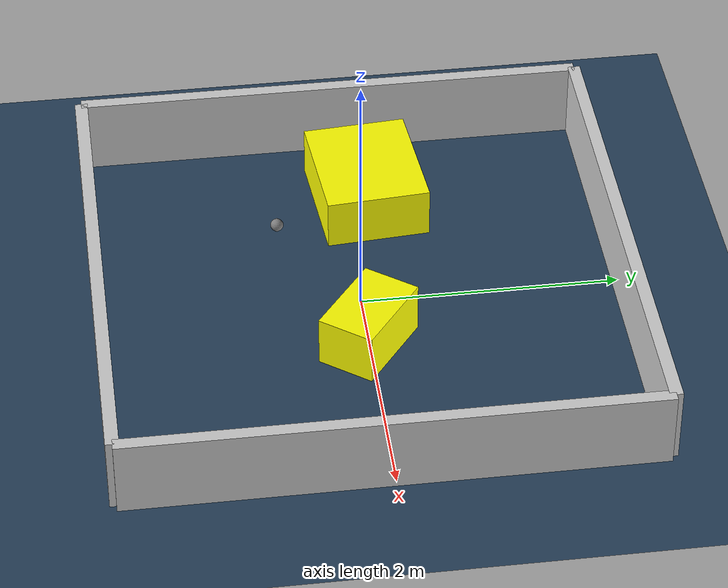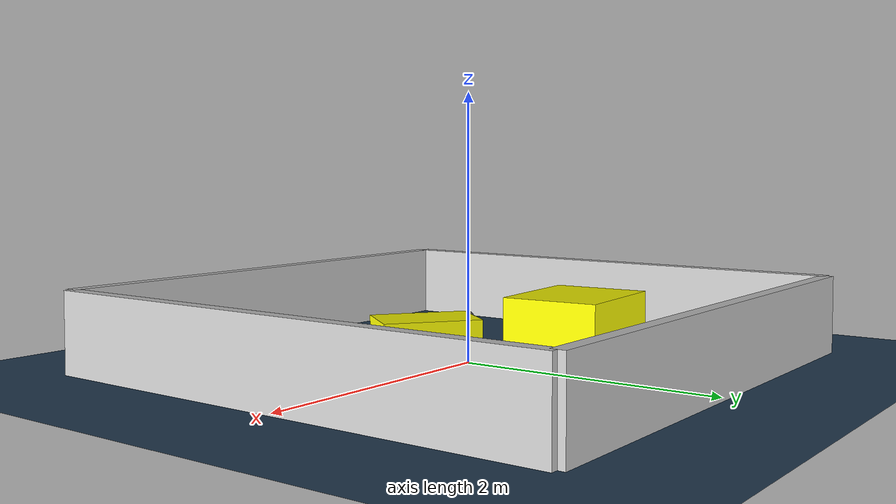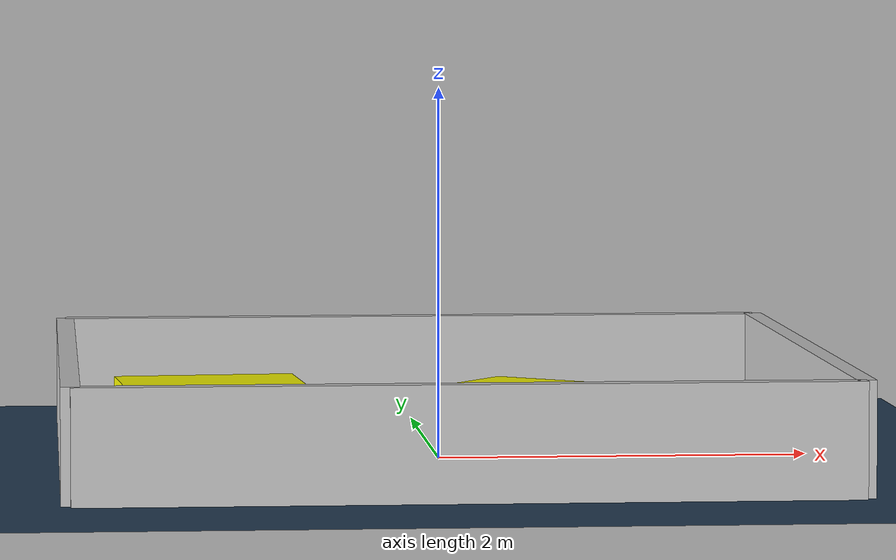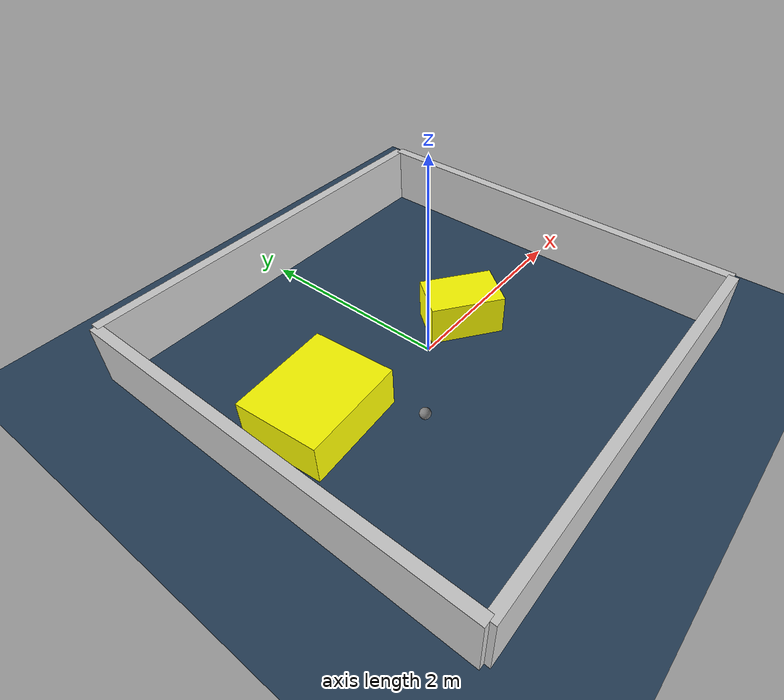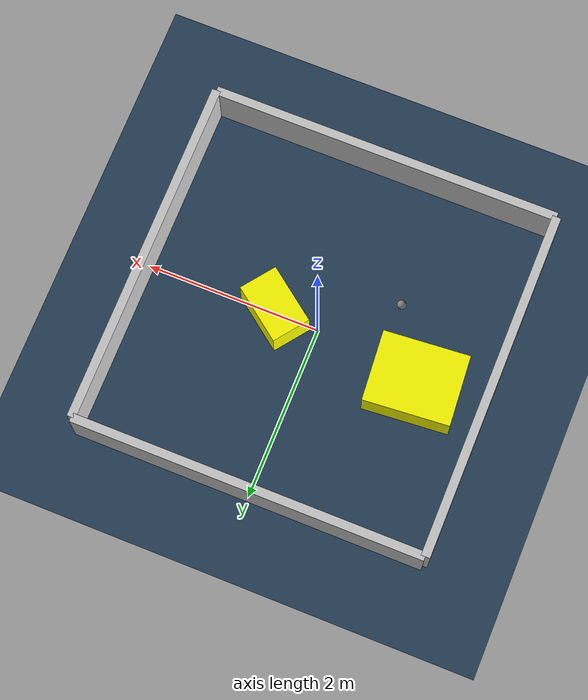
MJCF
<?xml version="1.0" ?>
<mujoco model="generated_environment">
  <option timestep="0.01" integrator="RK4" cone="elliptic"/>
  <default>
    <geom density="1"/>
  </default>
  <asset>
    <texture builtin="gradient" height="3072" rgb1="0.3 0.5 0.7" rgb2="0 0 0" type="skybox" width="512"/>
    <texture builtin="checker" height="300" mark="edge" markrgb="0.8 0.8 0.8" name="groundplane" rgb1="0.2 0.3 0.4" rgb2="0.1 0.2 0.3" type="2d" width="300"/>
    <material name="groundplane" reflectance="0.2" texrepeat="5 5" texture="groundplane" texuniform="true"/>
    <material name="robot" rgba="0.0 1.0 0.0 1"/>
  </asset>
  <worldbody>
    <light dir="0 0 -1" directional="true" pos="0 0 1.5"/>
    <geom condim="4" friction="1.0 0.005 0.001" material="groundplane" name="floor" size="0 0 0.05" type="plane"/>
    <body name="walls">
      <geom name="wall_1" condim="4" pos="-2.0 0.0 0.3" rgba="0.800000011920929 0.800000011920929 0.800000011920929 1.0" size="0.05 2.0 0.3" type="box"/>
      <geom name="wall_2" condim="4" pos="2.0 0.0 0.3" rgba="0.800000011920929 0.800000011920929 0.800000011920929 1.0" size="0.05 2.0 0.3" type="box"/>
      <geom name="wall_3" condim="4" pos="0.0 -2.0 0.3" rgba="0.800000011920929 0.800000011920929 0.800000011920929 1.0" size="2.0 0.05 0.3" type="box"/>
      <geom name="wall_4" condim="4" pos="0.0 2.0 0.3" rgba="0.800000011920929 0.800000011920929 0.800000011920929 1.0" size="2.0 0.05 0.3" type="box"/>
    </body>
    <body name="robot">
      <joint name="joint_x" type="slide" pos="0 0 0" axis="1 0 0"/>
      <joint name="joint_y" type="slide" pos="0 0 0" axis="0 1 0"/>
      <geom name="robot" type="sphere" pos="-0.7646580745456895 -0.5639253263272737 0.2" size="0.05" mass="5." friction="1.0 0.005 0.0001" condim="4"/>
      <site name="sensor_ball"/>
    </body>
    <body name="obstacle_1_movable">
      <geom name="obstacle_1_movable" condim="4" pos="0.5032285969497963 -0.0062039516259704275 0.2" euler="0 0 232.98098706777165" friction="1.0 0.005 0.001" rgba="1 1 0 1" size="0.226537211226916 0.35244896833526285 0.2" type="box" mass="0.1"/>
      <joint type="free"/>
    </body>
    <body name="obstacle_2_movable">
      <geom name="obstacle_2_movable" condim="4" pos="-1.220444500352603 0.19739375793285685 0.2" euler="0 0 4.483999127119072" friction="1.0 0.005 0.001" rgba="1 1 0 1" size="0.4911176224203954 0.4058272450650379 0.2" type="box" mass="0.1"/>
      <joint type="free"/>
    </body>
  </worldbody>
  <actuator>
    <motor name="actuator_x" joint="joint_x" gear="1" ctrlrange="-1 1"/>
    <motor name="actuator_y" joint="joint_y" gear="1" ctrlrange="-1 1"/>
  </actuator>
</mujoco>
